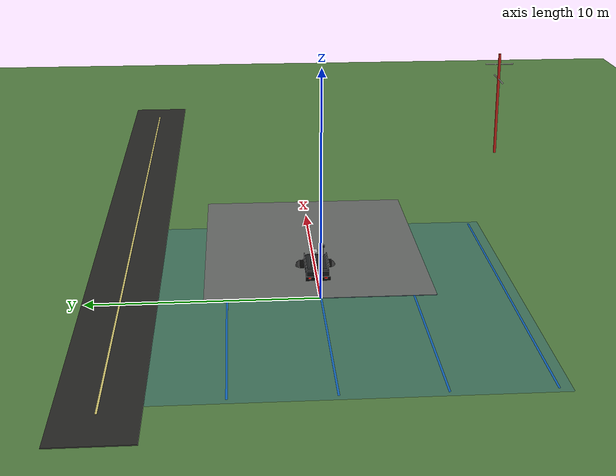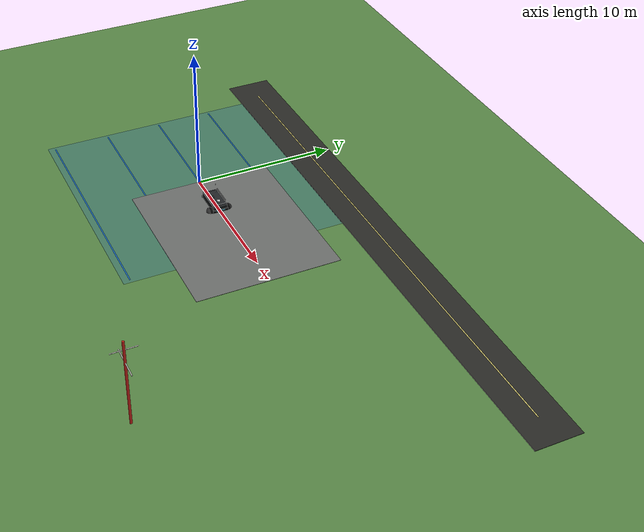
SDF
<sdf version="1.6">
 <world name="perch">
  <physics name="4ms" type="ignored">
   <max_step_size>0.004</max_step_size>
   <real_time_factor>1.0</real_time_factor>
  </physics>
  <plugin filename="gz-sim-physics-system" name="gz::sim::systems::Physics"/>
  <plugin filename="gz-sim-scene-broadcaster-system" name="gz::sim::systems::SceneBroadcaster"/>
  <plugin filename="gz-sim-user-commands-system" name="gz::sim::systems::UserCommands"/>
  <plugin filename="gz-sim-sensors-system" name="gz::sim::systems::Sensors">
   <render_engine>ogre2</render_engine>
  </plugin>
  <scene>
   <ambient>0.45 0.52 0.62 1</ambient>
   <background>0.72 0.84 0.95 1</background>
   <shadows>true</shadows>
  </scene>
  <light type="directional" name="sun">
   <pose>0 0 10 0 0 0</pose>
   <diffuse>0.8 0.8 0.8 1</diffuse>
   <specular>0.2 0.2 0.2 1</specular>
   <attenuation>
    <range>1000</range>
    <constant>0.9</constant>
    <linear>0.01</linear>
    <quadratic>0.001</quadratic>
   </attenuation>
   <direction>-0.5 0.1 -0.9</direction>
  </light>
  <model name="ground_plane">
   <static>true</static>
   <link name="link">
    <collision name="collision">
     <geometry><plane><normal>0 0 1</normal><size>100 100</size></plane></geometry>
    </collision>
    <visual name="visual">
     <geometry><plane><normal>0 0 1</normal><size>100 100</size></plane></geometry>
     <material>
      <ambient>0.28 0.42 0.22 1</ambient>
      <diffuse>0.34 0.52 0.27 1</diffuse>
      <specular>0.08 0.1 0.06 1</specular>
     </material>
    </visual>
   </link>
  </model>
  <model name="survey_grid_overlay">
   <static>true</static>
   <link name="link">
    <visual name="survey_area">
     <pose>0 0 0.012 0 0 0</pose>
     <geometry><box><size>17 17 0.01</size></box></geometry>
     <material><ambient>0.05 0.2 0.45 0.22</ambient><diffuse>0.05 0.35 0.8 0.22</diffuse></material>
    </visual>
    <visual name="survey_lane_0">
     <pose>0 -8 0.025 0 0 0</pose>
     <geometry><box><size>16.5 0.08 0.01</size></box></geometry>
     <material><ambient>0.05 0.45 1 0.75</ambient><diffuse>0.05 0.45 1 0.75</diffuse></material>
    </visual>
    <visual name="survey_lane_1">
     <pose>0 -4 0.025 0 0 0</pose>
     <geometry><box><size>16.5 0.08 0.01</size></box></geometry>
     <material><ambient>0.05 0.45 1 0.75</ambient><diffuse>0.05 0.45 1 0.75</diffuse></material>
    </visual>
    <visual name="survey_lane_2">
     <pose>0 0 0.025 0 0 0</pose>
     <geometry><box><size>16.5 0.08 0.01</size></box></geometry>
     <material><ambient>0.05 0.45 1 0.75</ambient><diffuse>0.05 0.45 1 0.75</diffuse></material>
    </visual>
    <visual name="survey_lane_3">
     <pose>0 4 0.025 0 0 0</pose>
     <geometry><box><size>16.5 0.08 0.01</size></box></geometry>
     <material><ambient>0.05 0.45 1 0.75</ambient><diffuse>0.05 0.45 1 0.75</diffuse></material>
    </visual>
    <visual name="survey_lane_4">
     <pose>0 8 0.025 0 0 0</pose>
     <geometry><box><size>16.5 0.08 0.01</size></box></geometry>
     <material><ambient>0.05 0.45 1 0.75</ambient><diffuse>0.05 0.45 1 0.75</diffuse></material>
    </visual>
   </link>
  </model>
  <model name="service_road">
   <static>true</static>
   <pose>10 8.5 0.025 0 0 0</pose>
   <link name="link">
    <visual name="asphalt">
     <geometry><box><size>42 3.2 0.04</size></box></geometry>
     <material>
      <ambient>0.12 0.12 0.12 1</ambient>
      <diffuse>0.16 0.16 0.15 1</diffuse>
      <specular>0.02 0.02 0.02 1</specular>
     </material>
    </visual>
    <collision name="collision"><geometry><box><size>42 3.2 0.04</size></box></geometry></collision>
   </link>
  </model>
  <model name="road_centerline">
   <static>true</static>
   <pose>10 8.5 0.055 0 0 0</pose>
   <link name="link">
    <visual name="stripe">
     <geometry><box><size>38 0.08 0.01</size></box></geometry>
     <material><ambient>0.85 0.8 0.45 1</ambient><diffuse>0.85 0.8 0.45 1</diffuse></material>
    </visual>
   </link>
  </model>
  <model name="operations_pad">
   <static>true</static>
   <pose>6 0 0.018 0 0 0</pose>
   <link name="link">
    <visual name="concrete">
     <geometry><box><size>12 10 0.03</size></box></geometry>
     <material>
      <ambient>0.34 0.35 0.35 1</ambient>
      <diffuse>0.42 0.43 0.42 1</diffuse>
      <specular>0.08 0.08 0.08 1</specular>
     </material>
    </visual>
    <collision name="collision"><geometry><box><size>12 10 0.03</size></box></geometry></collision>
   </link>
  </model>
  <model name="radio_tower">
   <static>true</static>
   <pose>20 -12 0 0 0 0</pose>
   <link name="link">
    <visual name="mast">
     <pose>0 0 3 0 0 0</pose>
     <geometry><cylinder><radius>0.08</radius><length>6</length></cylinder></geometry>
     <material><ambient>0.55 0.08 0.06 1</ambient><diffuse>0.7 0.12 0.08 1</diffuse></material>
    </visual>
    <visual name="crossbar_0">
     <pose>0 0 4.5 0 1.5707 0</pose>
     <geometry><cylinder><radius>0.035</radius><length>2.2</length></cylinder></geometry>
     <material><ambient>0.75 0.75 0.72 1</ambient><diffuse>0.75 0.75 0.72 1</diffuse></material>
    </visual>
    <visual name="crossbar_1">
     <pose>0 0 5.4 1.5707 0 0</pose>
     <geometry><cylinder><radius>0.03</radius><length>1.6</length></cylinder></geometry>
     <material><ambient>0.75 0.75 0.72 1</ambient><diffuse>0.75 0.75 0.72 1</diffuse></material>
    </visual>
   </link>
  </model>
  <include><name>perch_ugv</name><pose>3 0 0 0 0 0</pose><uri>perch_ugv</uri></include>
  <model name="payload">
   <pose>0 0 0.05 0 0 0</pose>
   <link name="payload_link">
    <inertial>
     <mass>0.15</mass>
     <inertia><ixx>0.0001</ixx><iyy>0.0001</iyy><izz>0.0001</izz><ixy>0</ixy><ixz>0</ixz><iyz>0</iyz></inertia>
    </inertial>
    <visual name="visual">
     <geometry><box><size>0.08 0.08 0.06</size></box></geometry>
     <material><ambient>0.9 0.6 0.1 1</ambient><diffuse>0.9 0.6 0.1 1</diffuse></material>
    </visual>
    <collision name="collision"><geometry><box><size>0.08 0.08 0.06</size></box></geometry></collision>
   </link>
  </model>
 </world>
</sdf>

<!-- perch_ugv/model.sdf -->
<sdf version="1.6">
  <model name="perch_ugv">
    <link name="chassis">
      <pose>-0.151427 0 0.175 0 0 0</pose>
      <inertial>
        <mass>1.14395</mass>
        <inertia>
          <ixx>0.126164</ixx>
          <ixy>0</ixy>
          <ixz>0</ixz>
          <iyy>0.416519</iyy>
          <iyz>0</iyz>
          <izz>0.481014</izz>
        </inertia>
      </inertial>
      <visual name="visual">
        <geometry>
          <box>
            <size>2.01142 1 0.568726</size>
          </box>
        </geometry>
        <material>
          <ambient>0.03 0.035 0.04 1</ambient>
          <diffuse>0.06 0.07 0.075 1</diffuse>
          <specular>0.12 0.12 0.13 1</specular>
        </material>
      </visual>
      <visual name="front_bumper">
        <pose>1.02 0 -0.08 0 0 0</pose>
        <geometry>
          <box>
            <size>0.08 1.1 0.22</size>
          </box>
        </geometry>
        <material>
          <ambient>0.01 0.012 0.014 1</ambient>
          <diffuse>0.015 0.018 0.02 1</diffuse>
        </material>
      </visual>
      <visual name="rear_bumper">
        <pose>-1.02 0 -0.08 0 0 0</pose>
        <geometry>
          <box>
            <size>0.08 1.1 0.22</size>
          </box>
        </geometry>
        <material>
          <ambient>0.01 0.012 0.014 1</ambient>
          <diffuse>0.015 0.018 0.02 1</diffuse>
        </material>
      </visual>
      <visual name="landing_deck">
        <pose>-0.02 0 0.295 0 0 0</pose>
        <geometry>
          <box>
            <size>1.65 0.9 0.05</size>
          </box>
        </geometry>
        <material>
          <ambient>0.11 0.12 0.125 1</ambient>
          <diffuse>0.14 0.15 0.155 1</diffuse>
          <specular>0.2 0.2 0.18 1</specular>
        </material>
      </visual>
      <visual name="front_light_bar">
        <pose>1.065 0 -0.02 0 0 0</pose>
        <geometry>
          <box>
            <size>0.02 0.62 0.05</size>
          </box>
        </geometry>
        <material>
          <ambient>0.2 0.85 1 1</ambient>
          <diffuse>0.2 0.85 1 1</diffuse>
          <emissive>0.1 0.6 0.9 1</emissive>
        </material>
      </visual>
      <visual name="rear_left_light">
        <pose>-1.065 0.36 -0.02 0 0 0</pose>
        <geometry><box><size>0.02 0.12 0.06</size></box></geometry>
        <material><ambient>1 0.05 0.03 1</ambient><diffuse>1 0.05 0.03 1</diffuse><emissive>0.55 0.02 0.01 1</emissive></material>
      </visual>
      <visual name="rear_right_light">
        <pose>-1.065 -0.36 -0.02 0 0 0</pose>
        <geometry><box><size>0.02 0.12 0.06</size></box></geometry>
        <material><ambient>1 0.05 0.03 1</ambient><diffuse>1 0.05 0.03 1</diffuse><emissive>0.55 0.02 0.01 1</emissive></material>
      </visual>
      <visual name="left_rail">
        <pose>-0.05 0.5 0.45 0 1.5707 0</pose>
        <geometry><cylinder><radius>0.025</radius><length>1.55</length></cylinder></geometry>
        <material><ambient>0.02 0.02 0.022 1</ambient><diffuse>0.02 0.02 0.022 1</diffuse></material>
      </visual>
      <visual name="right_rail">
        <pose>-0.05 -0.5 0.45 0 1.5707 0</pose>
        <geometry><cylinder><radius>0.025</radius><length>1.55</length></cylinder></geometry>
        <material><ambient>0.02 0.02 0.022 1</ambient><diffuse>0.02 0.02 0.022 1</diffuse></material>
      </visual>
      <visual name="lidar_puck">
        <pose>0.72 0 0.54 0 0 0</pose>
        <geometry><cylinder><radius>0.11</radius><length>0.08</length></cylinder></geometry>
        <material><ambient>0.85 0.88 0.86 1</ambient><diffuse>0.85 0.88 0.86 1</diffuse></material>
      </visual>
      <visual name="camera_mast">
        <pose>0.52 -0.35 0.58 0 0 0</pose>
        <geometry><cylinder><radius>0.025</radius><length>0.45</length></cylinder></geometry>
        <material><ambient>0.02 0.02 0.022 1</ambient><diffuse>0.02 0.02 0.022 1</diffuse></material>
      </visual>
      <visual name="camera_head">
        <pose>0.52 -0.35 0.84 0 0 0</pose>
        <geometry><box><size>0.14 0.12 0.1</size></box></geometry>
        <material><ambient>0.08 0.08 0.085 1</ambient><diffuse>0.08 0.08 0.085 1</diffuse></material>
      </visual>
      <visual name="antenna_0">
        <pose>-0.62 0.33 0.68 0 0 0</pose>
        <geometry><cylinder><radius>0.012</radius><length>0.7</length></cylinder></geometry>
        <material><ambient>0.01 0.01 0.012 1</ambient><diffuse>0.01 0.01 0.012 1</diffuse></material>
      </visual>
      <visual name="antenna_1">
        <pose>-0.72 -0.31 0.62 0 0.18 0</pose>
        <geometry><cylinder><radius>0.01</radius><length>0.55</length></cylinder></geometry>
        <material><ambient>0.01 0.01 0.012 1</ambient><diffuse>0.01 0.01 0.012 1</diffuse></material>
      </visual>
      <collision name="collision">
        <geometry>
          <box>
            <size>2.01142 1 0.568726</size>
          </box>
        </geometry>
      </collision>
      <sensor name="perch_ugv_lidar" type="gpu_lidar">
        <pose>0.9 0 0.32 0 0 0</pose>
        <topic>scan</topic>
        <update_rate>10</update_rate>
        <lidar>
          <scan>
            <horizontal>
              <samples>360</samples>
              <resolution>1</resolution>
              <min_angle>-3.14159</min_angle>
              <max_angle>3.14159</max_angle>
            </horizontal>
          </scan>
          <range>
            <min>0.12</min>
            <max>15.0</max>
            <resolution>0.02</resolution>
          </range>
        </lidar>
        <always_on>1</always_on>
        <visualize>false</visualize>
      </sensor>
    </link>

    <link name="marker_plate">
      <pose>-0.151427 0 0.469726 0 0 0</pose>
      <inertial>
        <mass>0.05</mass>
        <inertia>
          <ixx>0.0001</ixx>
          <iyy>0.0001</iyy>
          <izz>0.0002</izz>
          <ixy>0</ixy>
          <ixz>0</ixz>
          <iyz>0</iyz>
        </inertia>
      </inertial>
      <visual name="visual">
        <geometry>
          <box>
            <size>0.7 0.7 0.012</size>
          </box>
        </geometry>
        <material>
          <pbr>
            <metal>
              <albedo_map>materials/textures/marker0.png</albedo_map>
              <roughness>0.8</roughness>
              <metalness>0.0</metalness>
            </metal>
          </pbr>
        </material>
      </visual>
    </link>

    <joint name="marker_plate_joint" type="fixed">
      <parent>chassis</parent>
      <child>marker_plate</child>
    </joint>

    <link name="left_wheel">
      <pose>0.554283 0.625029 -0.025 -1.5707 0 0</pose>
      <inertial>
        <mass>2</mass>
        <inertia>
          <ixx>0.145833</ixx>
          <ixy>0</ixy>
          <ixz>0</ixz>
          <iyy>0.145833</iyy>
          <iyz>0</iyz>
          <izz>0.125</izz>
        </inertia>
      </inertial>
      <visual name="visual">
        <geometry>
          <sphere>
            <radius>0.3</radius>
          </sphere>
        </geometry>
        <material>
          <ambient>0.2 0.2 0.2 1</ambient>
          <diffuse>0.2 0.2 0.2 1</diffuse>
          <specular>0.2 0.2 0.2 1</specular>
        </material>
      </visual>
      <visual name="tire_visual">
        <geometry>
          <cylinder>
            <radius>0.32</radius>
            <length>0.22</length>
          </cylinder>
        </geometry>
        <material>
          <ambient>0.015 0.015 0.014 1</ambient>
          <diffuse>0.02 0.02 0.018 1</diffuse>
          <specular>0.02 0.02 0.02 1</specular>
        </material>
      </visual>
      <collision name="collision">
        <geometry>
          <sphere>
            <radius>0.3</radius>
          </sphere>
        </geometry>
        <surface>
          <friction>
            <ode>
              <mu>1</mu>
              <mu2>1</mu2>
              <slip1>0.035</slip1>
              <slip2>0</slip2>
              <fdir1>0 0 1</fdir1>
            </ode>
          </friction>
        </surface>
      </collision>
    </link>

    <link name="right_wheel">
      <pose>0.554282 -0.625029 -0.025 -1.5707 0 0</pose>
      <inertial>
        <mass>2</mass>
        <inertia>
          <ixx>0.145833</ixx>
          <ixy>0</ixy>
          <ixz>0</ixz>
          <iyy>0.145833</iyy>
          <iyz>0</iyz>
          <izz>0.125</izz>
        </inertia>
      </inertial>
      <visual name="visual">
        <geometry>
          <sphere>
            <radius>0.3</radius>
          </sphere>
        </geometry>
        <material>
          <ambient>0.2 0.2 0.2 1</ambient>
          <diffuse>0.2 0.2 0.2 1</diffuse>
          <specular>0.2 0.2 0.2 1</specular>
        </material>
      </visual>
      <visual name="tire_visual">
        <geometry>
          <cylinder>
            <radius>0.32</radius>
            <length>0.22</length>
          </cylinder>
        </geometry>
        <material>
          <ambient>0.015 0.015 0.014 1</ambient>
          <diffuse>0.02 0.02 0.018 1</diffuse>
          <specular>0.02 0.02 0.02 1</specular>
        </material>
      </visual>
      <collision name="collision">
        <geometry>
          <sphere>
            <radius>0.3</radius>
          </sphere>
        </geometry>
        <surface>
          <friction>
            <ode>
              <mu>1</mu>
              <mu2>1</mu2>
              <slip1>0.035</slip1>
              <slip2>0</slip2>
              <fdir1>0 0 1</fdir1>
            </ode>
          </friction>
        </surface>
      </collision>
    </link>

    <link name="caster">
      <pose>-0.957138 0 -0.125 0 0 0</pose>
      <inertial>
        <mass>1</mass>
        <inertia>
          <ixx>0.1</ixx>
          <ixy>0</ixy>
          <ixz>0</ixz>
          <iyy>0.1</iyy>
          <iyz>0</iyz>
          <izz>0.1</izz>
        </inertia>
      </inertial>
      <visual name="visual">
        <geometry>
          <sphere>
            <radius>0.2</radius>
          </sphere>
        </geometry>
        <material>
          <ambient>0.2 0.2 0.2 1</ambient>
          <diffuse>0.2 0.2 0.2 1</diffuse>
          <specular>0.2 0.2 0.2 1</specular>
        </material>
      </visual>
      <collision name="collision">
        <geometry>
          <sphere>
            <radius>0.2</radius>
          </sphere>
        </geometry>
      </collision>
    </link>

    <joint name="left_wheel_joint" type="revolute">
      <parent>chassis</parent>
      <child>left_wheel</child>
      <axis>
        <xyz>0 0 1</xyz>
        <limit>
          <lower>-1.79769e+308</lower>
          <upper>1.79769e+308</upper>
        </limit>
      </axis>
    </joint>

    <joint name="right_wheel_joint" type="revolute">
      <parent>chassis</parent>
      <child>right_wheel</child>
      <axis>
        <xyz>0 0 1</xyz>
        <limit>
          <lower>-1.79769e+308</lower>
          <upper>1.79769e+308</upper>
        </limit>
      </axis>
    </joint>

    <joint name="caster_wheel" type="ball">
      <parent>chassis</parent>
      <child>caster</child>
    </joint>

    <plugin filename="gz-sim-diff-drive-system" name="gz::sim::systems::DiffDrive">
      <left_joint>left_wheel_joint</left_joint>
      <right_joint>right_wheel_joint</right_joint>
      <wheel_separation>1.25</wheel_separation>
      <wheel_radius>0.3</wheel_radius>
      <odom_publish_frequency>20</odom_publish_frequency>
      <max_linear_acceleration>1</max_linear_acceleration>
      <min_linear_acceleration>-1</min_linear_acceleration>
      <max_angular_acceleration>2</max_angular_acceleration>
      <min_angular_acceleration>-2</min_angular_acceleration>
      <max_linear_velocity>0.8</max_linear_velocity>
      <min_linear_velocity>-0.8</min_linear_velocity>
      <max_angular_velocity>1</max_angular_velocity>
      <min_angular_velocity>-1</min_angular_velocity>
      <odom_frame>odom</odom_frame>
      <robot_base_frame>base_link</robot_base_frame>
      <frame_id>odom</frame_id>
      <child_frame_id>base_link</child_frame_id>
    </plugin>

    <plugin filename="gz-sim-pose-publisher-system" name="gz::sim::systems::PosePublisher">
      <publish_link_pose>true</publish_link_pose>
      <use_pose_vector_msg>true</use_pose_vector_msg>
      <static_publisher>true</static_publisher>
      <static_update_frequency>20</static_update_frequency>
    </plugin>
  </model>
</sdf>
